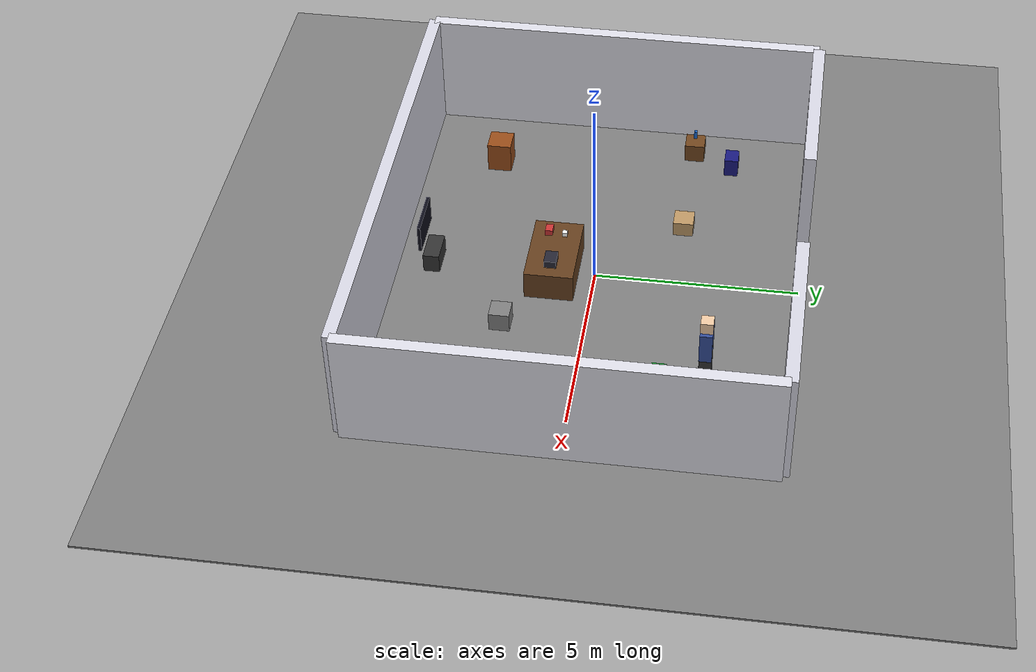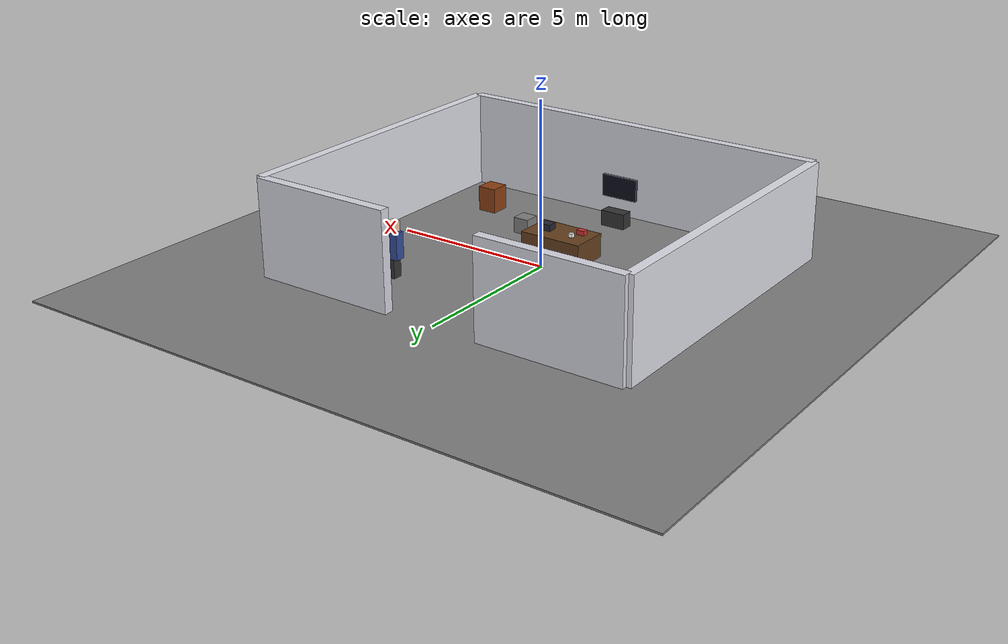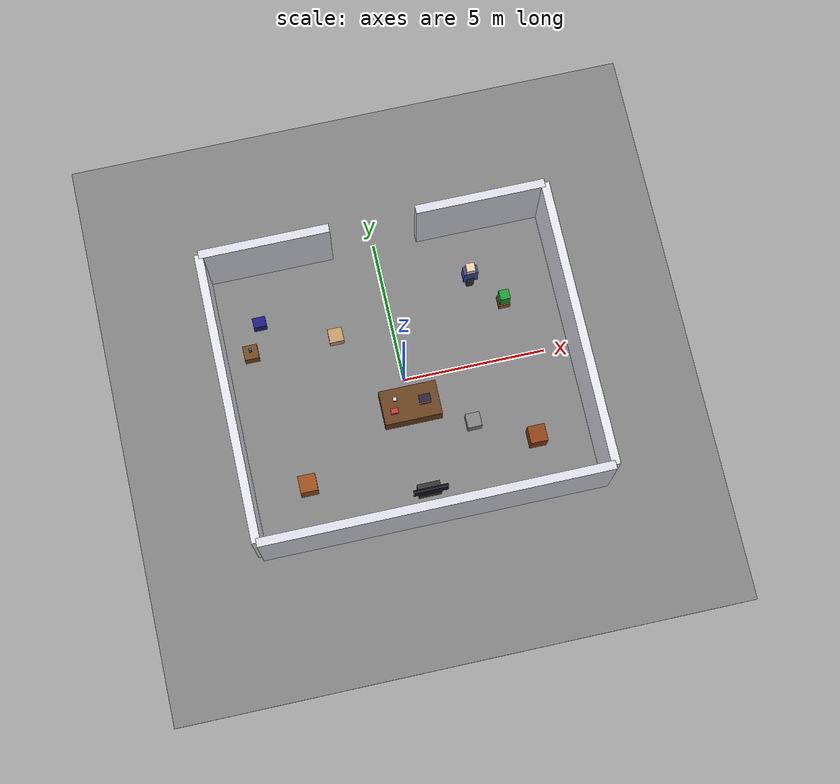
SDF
<?xml version="1.0" ?>
<sdf version="1.6">
  <world name="smart_office">
    <!-- ===== REQUIRED SYSTEM PLUGINS FOR HEADLESS RENDERING ===== -->
    <plugin filename="libignition-gazebo-physics-system.so" name="gz::sim::systems::Physics">
    </plugin>

    <plugin filename="libignition-gazebo-scene-broadcaster-system.so" name="gz::sim::systems::SceneBroadcaster">
    </plugin>

    <plugin filename="libignition-gazebo-sensors-system.so" name="gz::sim::systems::Sensors">
      <render_engine>ogre2</render_engine>
      <rendering_server_ip>127.0.0.1</rendering_server_ip>
    </plugin>

    <plugin filename="libignition-gazebo-user-commands-system.so" name="gz::sim::systems::UserCommands">
    </plugin>

    <plugin filename="libignition-gazebo-contact-system.so" name="gz::sim::systems::Contact">
    </plugin>

    <light type="directional" name="sun">
      <cast_shadows>1</cast_shadows>
      <pose>0 0 10 0 -0 0</pose>
      <diffuse>0.8 0.8 0.8 1</diffuse>
      <direction>-0.5 0.1 -0.9</direction>
    </light>
    <scene>
      <ambient>0.4 0.4 0.4 1</ambient>
      <background>0.7 0.7 0.7 1</background>
      <shadows>1</shadows>
    </scene>
    <physics name="default_physics" default="0" type="ode">
      <max_step_size>0.004</max_step_size>
      <real_time_factor>1</real_time_factor>
      <gravity>0 0 -9.81</gravity>
    </physics>
    <model name="ground_plane">
      <static>true</static>
      <link name="link">
        <collision name="collision">
          <geometry>
            <box>
              <size>20 20 0.05</size>
            </box>
          </geometry>
        </collision>
        <visual name="visual">
          <geometry>
            <box>
              <size>20 20 0.05</size>
            </box>
          </geometry>
          <material>
            <ambient>0.5 0.5 0.5 1</ambient>
            <diffuse>0.5 0.5 0.5 1</diffuse>
          </material>
        </visual>
      </link>
      <pose>0 0 -0.01 0 0 0</pose>
    </model>
    <model name="back_wall">
      <static>true</static>
      <link name="link">
        <collision name="collision">
          <geometry>
            <box>
              <size>12 0.3 3</size>
            </box>
          </geometry>
        </collision>
        <visual name="visual">
          <geometry>
            <box>
              <size>12 0.3 3</size>
            </box>
          </geometry>
          <material>
            <ambient>0.85 0.85 0.9 1</ambient>
            <diffuse>0.85 0.85 0.9 1</diffuse>
          </material>
        </visual>
      </link>
      <pose>0 -5 1.5 0 0 0</pose>
    </model>
    <model name="left_wall">
      <static>true</static>
      <link name="link">
        <collision name="collision">
          <geometry>
            <box>
              <size>0.3 10 3</size>
            </box>
          </geometry>
        </collision>
        <visual name="visual">
          <geometry>
            <box>
              <size>0.3 10 3</size>
            </box>
          </geometry>
          <material>
            <ambient>0.88 0.88 0.92 1</ambient>
            <diffuse>0.88 0.88 0.92 1</diffuse>
          </material>
        </visual>
      </link>
      <pose>-6 0 1.5 0 0 0</pose>
    </model>
    <model name="right_wall">
      <static>true</static>
      <link name="link">
        <collision name="collision">
          <geometry>
            <box>
              <size>0.3 10 3</size>
            </box>
          </geometry>
        </collision>
        <visual name="visual">
          <geometry>
            <box>
              <size>0.3 10 3</size>
            </box>
          </geometry>
          <material>
            <ambient>0.88 0.88 0.92 1</ambient>
            <diffuse>0.88 0.88 0.92 1</diffuse>
          </material>
        </visual>
      </link>
      <pose>6 0 1.5 0 0 0</pose>
    </model>
    <model name="front_wall_left">
      <static>true</static>
      <link name="link">
        <collision name="collision">
          <geometry>
            <box>
              <size>4.5 0.3 3</size>
            </box>
          </geometry>
        </collision>
        <visual name="visual">
          <geometry>
            <box>
              <size>4.5 0.3 3</size>
            </box>
          </geometry>
          <material>
            <ambient>0.85 0.85 0.9 1</ambient>
            <diffuse>0.85 0.85 0.9 1</diffuse>
          </material>
        </visual>
      </link>
      <pose>-3.75 5 1.5 0 0 0</pose>
    </model>
    <model name="front_wall_right">
      <static>true</static>
      <link name="link">
        <collision name="collision">
          <geometry>
            <box>
              <size>4.5 0.3 3</size>
            </box>
          </geometry>
        </collision>
        <visual name="visual">
          <geometry>
            <box>
              <size>4.5 0.3 3</size>
            </box>
          </geometry>
          <material>
            <ambient>0.85 0.85 0.9 1</ambient>
            <diffuse>0.85 0.85 0.9 1</diffuse>
          </material>
        </visual>
      </link>
      <pose>3.75 5 1.5 0 0 0</pose>
    </model>
    <model name="chair_1">
      <static>true</static>
      <link name="link">
        <collision name="collision">
          <geometry>
            <box>
              <size>0.6 0.6 0.8</size>
            </box>
          </geometry>
        </collision>
        <visual name="visual">
          <geometry>
            <box>
              <size>0.6 0.6 0.8</size>
            </box>
          </geometry>
          <material>
            <ambient>0.6 0.3 0.1 1</ambient>
            <diffuse>0.6 0.3 0.1 1</diffuse>
          </material>
        </visual>
      </link>
      <pose>-4 -3 0.4 0 0 0</pose>
    </model>
    <model name="chair_2">
      <static>true</static>
      <link name="link">
        <collision name="collision">
          <geometry>
            <box>
              <size>0.6 0.6 0.8</size>
            </box>
          </geometry>
        </collision>
        <visual name="visual">
          <geometry>
            <box>
              <size>0.6 0.6 0.8</size>
            </box>
          </geometry>
          <material>
            <ambient>0.55 0.25 0.08 1</ambient>
            <diffuse>0.55 0.25 0.08 1</diffuse>
          </material>
        </visual>
      </link>
      <pose>4 -3 0.4 0 0 0</pose>
    </model>
    <model name="dining_table">
      <static>true</static>
      <link name="link">
        <collision name="collision">
          <geometry>
            <box>
              <size>2.0 1.2 0.75</size>
            </box>
          </geometry>
        </collision>
        <visual name="visual">
          <geometry>
            <box>
              <size>2.0 1.2 0.75</size>
            </box>
          </geometry>
          <material>
            <ambient>0.4 0.25 0.12 1</ambient>
            <diffuse>0.4 0.25 0.12 1</diffuse>
          </material>
        </visual>
      </link>
      <pose>0 -1 0.375 0 0 0</pose>
    </model>
    <model name="laptop_1">
      <static>true</static>
      <link name="link">
        <collision name="collision">
          <geometry>
            <box>
              <size>0.4 0.3 0.25</size>
            </box>
          </geometry>
        </collision>
        <visual name="visual">
          <geometry>
            <box>
              <size>0.4 0.3 0.25</size>
            </box>
          </geometry>
          <material>
            <ambient>0.15 0.15 0.2 1</ambient>
            <diffuse>0.15 0.15 0.2 1</diffuse>
          </material>
        </visual>
      </link>
      <pose>0.5 -1 0.82 0 0 0</pose>
    </model>
    <model name="cup_1">
      <static>true</static>
      <link name="link">
        <collision name="collision">
          <geometry>
            <box>
              <size>0.12 0.12 0.12</size>
            </box>
          </geometry>
        </collision>
        <visual name="visual">
          <geometry>
            <box>
              <size>0.12 0.12 0.12</size>
            </box>
          </geometry>
          <material>
            <ambient>1 1 1 1</ambient>
            <diffuse>1 1 1 1</diffuse>
          </material>
        </visual>
      </link>
      <pose>-0.5 -0.8 0.84 0 0 0</pose>
    </model>
    <model name="books_stack">
      <static>true</static>
      <link name="link">
        <collision name="collision">
          <geometry>
            <box>
              <size>0.25 0.18 0.15</size>
            </box>
          </geometry>
        </collision>
        <visual name="visual">
          <geometry>
            <box>
              <size>0.25 0.18 0.15</size>
            </box>
          </geometry>
          <material>
            <ambient>0.8 0.2 0.2 1</ambient>
            <diffuse>0.8 0.2 0.2 1</diffuse>
          </material>
        </visual>
      </link>
      <pose>-0.6 -1.2 0.83 0 0 0</pose>
    </model>
    <model name="tv_monitor">
      <static>true</static>
      <link name="link">
        <collision name="collision">
          <geometry>
            <box>
              <size>1.2 0.08 0.7</size>
            </box>
          </geometry>
        </collision>
        <visual name="visual">
          <geometry>
            <box>
              <size>1.2 0.08 0.7</size>
            </box>
          </geometry>
          <material>
            <ambient>0.05 0.05 0.1 1</ambient>
            <diffuse>0.05 0.05 0.1 1</diffuse>
          </material>
        </visual>
      </link>
      <pose>0 -4.2 1.2 0 0 0</pose>
    </model>
    <model name="tv_stand">
      <static>true</static>
      <link name="link">
        <collision name="collision">
          <geometry>
            <box>
              <size>0.8 0.4 0.5</size>
            </box>
          </geometry>
        </collision>
        <visual name="visual">
          <geometry>
            <box>
              <size>0.8 0.4 0.5</size>
            </box>
          </geometry>
          <material>
            <ambient>0.2 0.2 0.2 1</ambient>
            <diffuse>0.2 0.2 0.2 1</diffuse>
          </material>
        </visual>
      </link>
      <pose>0 -4.0 0.25 0 0 0</pose>
    </model>
    <model name="bottle_1">
      <static>true</static>
      <link name="link">
        <collision name="collision">
          <geometry>
            <box>
              <size>0.08 0.08 0.22</size>
            </box>
          </geometry>
        </collision>
        <visual name="visual">
          <geometry>
            <box>
              <size>0.08 0.08 0.22</size>
            </box>
          </geometry>
          <material>
            <ambient>0.1 0.4 0.8 1</ambient>
            <diffuse>0.1 0.4 0.8 1</diffuse>
          </material>
        </visual>
      </link>
      <pose>-5 2 0.71 0 0 0</pose>
    </model>
    <model name="side_table">
      <static>true</static>
      <link name="link">
        <collision name="collision">
          <geometry>
            <box>
              <size>0.5 0.5 0.5</size>
            </box>
          </geometry>
        </collision>
        <visual name="visual">
          <geometry>
            <box>
              <size>0.5 0.5 0.5</size>
            </box>
          </geometry>
          <material>
            <ambient>0.45 0.28 0.12 1</ambient>
            <diffuse>0.45 0.28 0.12 1</diffuse>
          </material>
        </visual>
      </link>
      <pose>-5 2 0.25 0 0 0</pose>
    </model>
    <model name="plant_pot">
      <static>true</static>
      <link name="link">
        <collision name="collision">
          <geometry>
            <box>
              <size>0.4 0.4 0.35</size>
            </box>
          </geometry>
        </collision>
        <visual name="visual">
          <geometry>
            <box>
              <size>0.4 0.4 0.35</size>
            </box>
          </geometry>
          <material>
            <ambient>0.6 0.35 0.15 1</ambient>
            <diffuse>0.6 0.35 0.15 1</diffuse>
          </material>
        </visual>
      </link>
      <pose>4 2 0.175 0 0 0</pose>
    </model>
    <model name="plant_leaves">
      <static>true</static>
      <link name="link">
        <collision name="collision">
          <geometry>
            <box>
              <size>0.35 0.35 0.6</size>
            </box>
          </geometry>
        </collision>
        <visual name="visual">
          <geometry>
            <box>
              <size>0.35 0.35 0.6</size>
            </box>
          </geometry>
          <material>
            <ambient>0.1 0.6 0.2 1</ambient>
            <diffuse>0.1 0.6 0.2 1</diffuse>
          </material>
        </visual>
      </link>
      <pose>4 2 0.7 0 0 0</pose>
    </model>
    <model name="backpack_1">
      <static>true</static>
      <link name="link">
        <collision name="collision">
          <geometry>
            <box>
              <size>0.45 0.35 0.5</size>
            </box>
          </geometry>
        </collision>
        <visual name="visual">
          <geometry>
            <box>
              <size>0.45 0.35 0.5</size>
            </box>
          </geometry>
          <material>
            <ambient>0.1 0.1 0.5 1</ambient>
            <diffuse>0.1 0.1 0.5 1</diffuse>
          </material>
        </visual>
      </link>
      <pose>-4.5 3 0.25 0 0 0</pose>
    </model>
    <model name="person_torso">
      <static>true</static>
      <link name="link">
        <collision name="collision">
          <geometry>
            <box>
              <size>0.5 0.3 0.8</size>
            </box>
          </geometry>
        </collision>
        <visual name="visual">
          <geometry>
            <box>
              <size>0.5 0.3 0.8</size>
            </box>
          </geometry>
          <material>
            <ambient>0.2 0.3 0.6 1</ambient>
            <diffuse>0.2 0.3 0.6 1</diffuse>
          </material>
        </visual>
      </link>
      <pose>3 3 1.0 0 0 0</pose>
    </model>
    <model name="person_head">
      <static>true</static>
      <link name="link">
        <collision name="collision">
          <geometry>
            <box>
              <size>0.3 0.3 0.3</size>
            </box>
          </geometry>
        </collision>
        <visual name="visual">
          <geometry>
            <box>
              <size>0.3 0.3 0.3</size>
            </box>
          </geometry>
          <material>
            <ambient>0.95 0.8 0.65 1</ambient>
            <diffuse>0.95 0.8 0.65 1</diffuse>
          </material>
        </visual>
      </link>
      <pose>3 3 1.55 0 0 0</pose>
    </model>
    <model name="person_legs">
      <static>true</static>
      <link name="link">
        <collision name="collision">
          <geometry>
            <box>
              <size>0.25 0.3 1.0</size>
            </box>
          </geometry>
        </collision>
        <visual name="visual">
          <geometry>
            <box>
              <size>0.25 0.3 1.0</size>
            </box>
          </geometry>
          <material>
            <ambient>0.2 0.2 0.2 1</ambient>
            <diffuse>0.2 0.2 0.2 1</diffuse>
          </material>
        </visual>
      </link>
      <pose>3 3 0.35 0 0 0</pose>
    </model>
    <model name="box_obstacle">
      <static>true</static>
      <link name="link">
        <collision name="collision">
          <geometry>
            <box>
              <size>0.5 0.5 0.4</size>
            </box>
          </geometry>
        </collision>
        <visual name="visual">
          <geometry>
            <box>
              <size>0.5 0.5 0.4</size>
            </box>
          </geometry>
          <material>
            <ambient>0.75 0.6 0.4 1</ambient>
            <diffuse>0.75 0.6 0.4 1</diffuse>
          </material>
        </visual>
      </link>
      <pose>-2 2 0.2 0 0 0</pose>
    </model>
    <model name="cylinder_obstacle">
      <static>true</static>
      <link name="link">
        <collision name="collision">
          <geometry>
            <box>
              <size>0.5 0.5 0.5</size>
            </box>
          </geometry>
        </collision>
        <visual name="visual">
          <geometry>
            <box>
              <size>0.5 0.5 0.5</size>
            </box>
          </geometry>
          <material>
            <ambient>0.5 0.5 0.5 1</ambient>
            <diffuse>0.5 0.5 0.5 1</diffuse>
          </material>
        </visual>
      </link>
      <pose>2 -2 0.25 0 0 0</pose>
    </model>
  </world>
</sdf>
